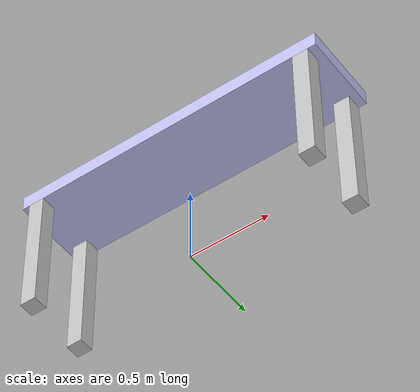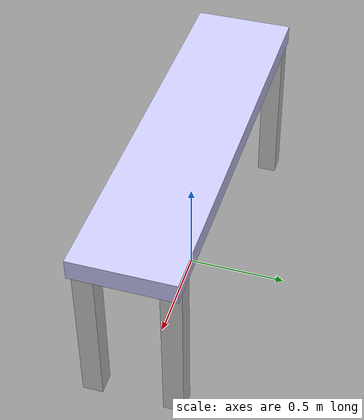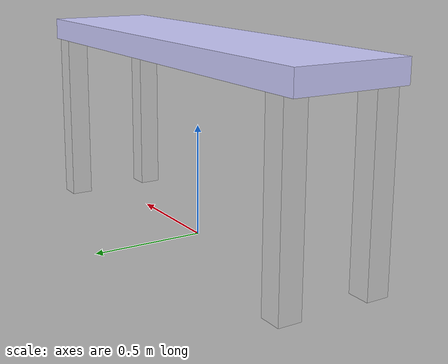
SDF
<?xml version="1.0" ?>
<sdf version="1.6">
  <model name="conveyor_belt">
    <static>false</static>

    <!-- Belt link renamed -->
    <link name="conveyor_belt_link">
      <pose>0 0 0.85 0 0 0</pose>
      <visual name="conveyor_belt_visual">
        <geometry>
          <box>
            <size>2 0.5 0.1</size>
          </box>
        </geometry>
        <material>
          <ambient>0.2 0.2 0.4 1</ambient>
          <diffuse>0.8 0.8 1.0 1</diffuse>
        </material>
      </visual>

      <!-- Collision renamed -->
      <collision name="conveyor_belt_collision">
        <geometry>
          <box>
            <size>2 0.5 0.1</size>
          </box>
        </geometry>
        <surface>
          <friction>
            <ode>
              <mu>0</mu>
              <mu2>0</mu2>
            </ode>
          </friction>
        </surface>
      </collision>

      <!-- Sensor references the new collision name -->
      <sensor name="contact_sensor" type="contact">
        <always_on>true</always_on>
        <update_rate>30</update_rate>
        <contact>
          <collision>conveyor_belt_collision</collision>
        </contact>
      </sensor>
    </link>

    <!-- Leg 1 -->
    <link name="leg1_link">
      <pose>-0.9 -0.2 0.4 0 0 0</pose>
      <visual name="leg1_visual">
        <geometry>
          <box>
            <size>0.1 0.1 0.8</size>
          </box>
        </geometry>
        <material>
          <ambient>0.2 0.2 0.2 1</ambient>
          <diffuse>0.8 0.8 0.8 1</diffuse>
        </material>
      </visual>
      <collision name="leg1_collision">
        <geometry>
          <box>
            <size>0.1 0.1 0.8</size>
          </box>
        </geometry>
      </collision>
    </link>

    <!-- Leg 2 -->
    <link name="leg2_link">
      <pose>0.9 -0.2 0.4 0 0 0</pose>
      <visual name="leg2_visual">
        <geometry>
          <box>
            <size>0.1 0.1 0.8</size>
          </box>
        </geometry>
        <material>
          <ambient>0.2 0.2 0.2 1</ambient>
          <diffuse>0.8 0.8 0.8 1</diffuse>
        </material>
      </visual>
      <collision name="leg2_collision">
        <geometry>
          <box>
            <size>0.1 0.1 0.8</size>
          </box>
        </geometry>
      </collision>
    </link>

    <!-- Leg 3 -->
    <link name="leg3_link">
      <pose>-0.9 0.2 0.4 0 0 0</pose>
      <visual name="leg3_visual">
        <geometry>
          <box>
            <size>0.1 0.1 0.8</size>
          </box>
        </geometry>
        <material>
          <ambient>0.2 0.2 0.2 1</ambient>
          <diffuse>0.8 0.8 0.8 1</diffuse>
        </material>
      </visual>
      <collision name="leg3_collision">
        <geometry>
          <box>
            <size>0.1 0.1 0.8</size>
          </box>
        </geometry>
      </collision>
    </link>

    <!-- Leg 4 -->
    <link name="leg4_link">
      <pose>0.9 0.2 0.4 0 0 0</pose>
      <visual name="leg4_visual">
        <geometry>
          <box>
            <size>0.1 0.1 0.8</size>
          </box>
        </geometry>
        <material>
          <ambient>0.2 0.2 0.2 1</ambient>
          <diffuse>0.8 0.8 0.8 1</diffuse>
        </material>
      </visual>
      <collision name="leg4_collision">
        <geometry>
          <box>
            <size>0.1 0.1 0.8</size>
          </box>
        </geometry>
      </collision>
    </link>

    <!-- Joints to attach legs to the belt -->
    <joint name="leg1_joint" type="fixed">
      <parent>conveyor_belt_link</parent>
      <child>leg1_link</child>
      <pose>-0.9 -0.2 0 0 0 0</pose>
    </joint>

    <joint name="leg2_joint" type="fixed">
      <parent>conveyor_belt_link</parent>
      <child>leg2_link</child>
      <pose>0.9 -0.2 0 0 0 0</pose>
    </joint>

    <joint name="leg3_joint" type="fixed">
      <parent>conveyor_belt_link</parent>
      <child>leg3_link</child>
      <pose>-0.9 0.2 0 0 0 0</pose>
    </joint>

    <joint name="leg4_joint" type="fixed">
      <parent>conveyor_belt_link</parent>
      <child>leg4_link</child>
      <pose>0.9 0.2 0 0 0 0</pose>
    </joint>

    <plugin name="conveyor_belt_plugin" filename="libconveyor_belt_plugin.so">
      <belt_speed>0.05</belt_speed>
    </plugin>
  </model>
</sdf>
